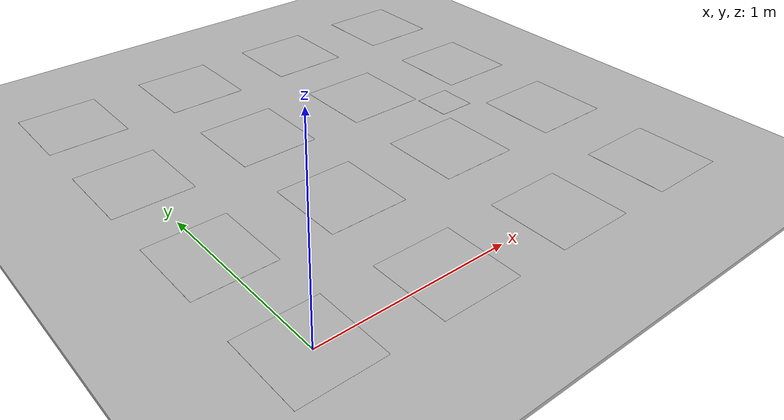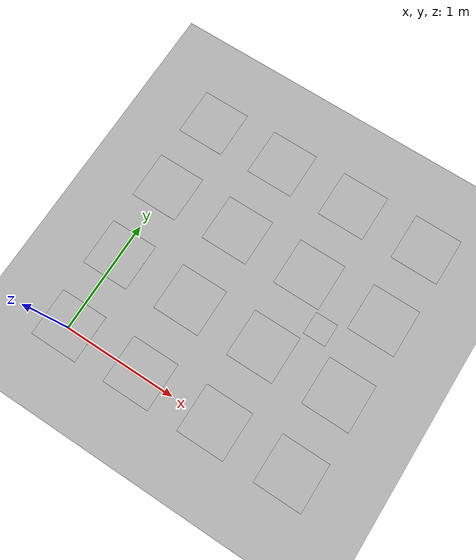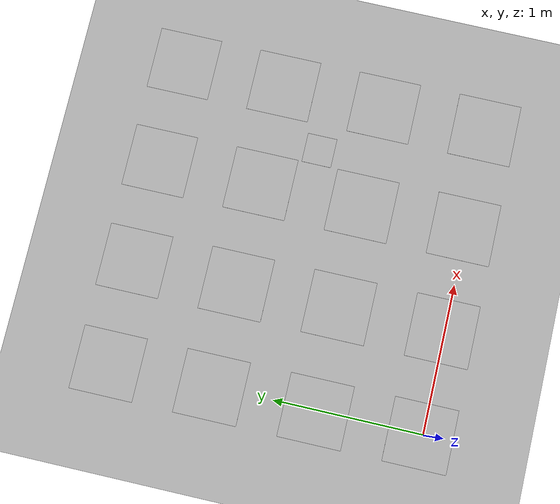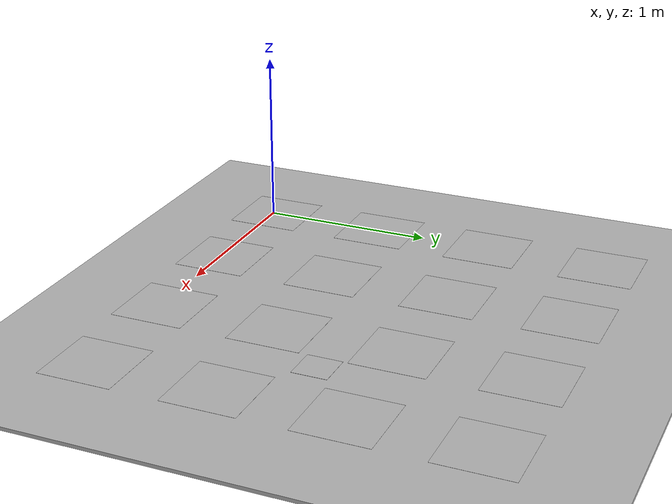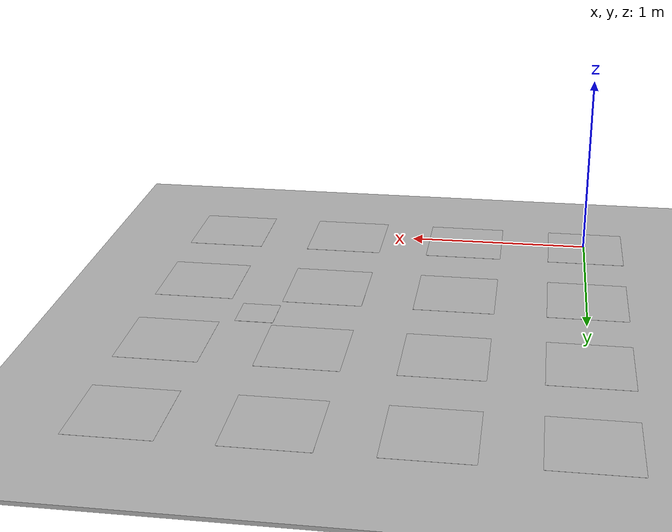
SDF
<sdf version="1.7">
 <world name="default">
  <light name="sun" type="directional">
   <pose>0 0 10 0 -0 0</pose>
   <diffuse>0.8 0.8 0.8 1</diffuse>
   <specular>0.2 0.2 0.2 1</specular>
   <attenuation>
    <range>1000</range>
    <constant>0.9</constant>
    <linear>0.01</linear>
    <quadratic>0.001</quadratic>
   </attenuation>
   <direction>-0.5 0.1 -0.9</direction>
   <spot><inner_angle>0</inner_angle><outer_angle>0</outer_angle><falloff>0</falloff></spot>
  </light>
  <model name="parquet_plane">
   <static>1</static>
   <link name="link">
    <collision name="collision"><geometry><box><size>200 200 0.02</size></box></geometry></collision>
    <visual name="visual">
     <cast_shadows>0</cast_shadows>
     <geometry><box><size>200 200 0.02</size></box></geometry>
     <material>
      <script>
       <uri>model://parquet_plane/materials/scripts</uri>
       <uri>model://parquet_plane/materials/textures</uri>
       <name>parquet</name>
      </script>
     </material>
    </visual>
   </link>
   <pose>0 0 -0.01 0 -0 0</pose>
  </model>
  <scene>
   <ambient>0.8 0.8 0.8 1</ambient>
   <background>0.8 0.9 1 1</background>
   <shadows>0</shadows>
   <grid>0</grid>
   <origin_visual>0</origin_visual>
  </scene>
  <physics name="default_physics" default="0" type="ode">
   <ode>
    <solver>
     <type>quick</type>
     <iters>10</iters>
     <sor>1.3</sor>
     <use_dynamic_moi_rescaling>0</use_dynamic_moi_rescaling>
    </solver>
    <constraints>
     <cfm>0</cfm>
     <erp>0.2</erp>
     <contact_max_correcting_vel>100</contact_max_correcting_vel>
     <contact_surface_layer>0.001</contact_surface_layer>
    </constraints>
   </ode>
   <max_step_size>0.004</max_step_size>
   <real_time_factor>1</real_time_factor>
   <real_time_update_rate>250</real_time_update_rate>
  </physics>
  <gravity>0 0 -9.8066</gravity>
  <magnetic_field>6e-06 2.3e-05 -4.2e-05</magnetic_field>
  <atmosphere type="adiabatic"/>
  <spherical_coordinates>
   <surface_model>EARTH_WGS84</surface_model>
   <latitude_deg>0</latitude_deg>
   <longitude_deg>0</longitude_deg>
   <elevation>0</elevation>
   <heading_deg>0</heading_deg>
  </spherical_coordinates>
  <model name="aruco_2_16">
   <static>1</static>
   <link name="aruco_2_16_link">
    <visual name="visual_marker_2_52">
     <pose>0 2.088 0 0 -0 1.5708</pose>
     <cast_shadows>0</cast_shadows>
     <geometry><box><size>0.424 0.424 0.001</size></box></geometry>
     <material>
      <script>
       <uri>model://aruco_shirokaya_1_txt/materials/scripts</uri>
       <uri>model://aruco_shirokaya_1_txt/materials/textures</uri>
       <name>aruco/marker_2_52</name>
      </script>
     </material>
    </visual>
    <visual name="visual_marker_2_53">
     <pose>0.696 2.088 0 0 -0 1.5708</pose>
     <cast_shadows>0</cast_shadows>
     <geometry><box><size>0.424 0.424 0.001</size></box></geometry>
     <material>
      <script>
       <uri>model://aruco_shirokaya_1_txt/materials/scripts</uri>
       <uri>model://aruco_shirokaya_1_txt/materials/textures</uri>
       <name>aruco/marker_2_53</name>
      </script>
     </material>
    </visual>
    <visual name="visual_marker_2_54">
     <pose>1.392 2.088 0 0 -0 1.5708</pose>
     <cast_shadows>0</cast_shadows>
     <geometry><box><size>0.424 0.424 0.001</size></box></geometry>
     <material>
      <script>
       <uri>model://aruco_shirokaya_1_txt/materials/scripts</uri>
       <uri>model://aruco_shirokaya_1_txt/materials/textures</uri>
       <name>aruco/marker_2_54</name>
      </script>
     </material>
    </visual>
    <visual name="visual_marker_2_55">
     <pose>2.088 2.088 0 0 -0 1.5708</pose>
     <cast_shadows>0</cast_shadows>
     <geometry><box><size>0.424 0.424 0.001</size></box></geometry>
     <material>
      <script>
       <uri>model://aruco_shirokaya_1_txt/materials/scripts</uri>
       <uri>model://aruco_shirokaya_1_txt/materials/textures</uri>
       <name>aruco/marker_2_55</name>
      </script>
     </material>
    </visual>
    <visual name="visual_marker_2_48">
     <pose>0 1.392 0 0 -0 1.5708</pose>
     <cast_shadows>0</cast_shadows>
     <geometry><box><size>0.424 0.424 0.001</size></box></geometry>
     <material>
      <script>
       <uri>model://aruco_shirokaya_1_txt/materials/scripts</uri>
       <uri>model://aruco_shirokaya_1_txt/materials/textures</uri>
       <name>aruco/marker_2_48</name>
      </script>
     </material>
    </visual>
    <visual name="visual_marker_2_49">
     <pose>0.696 1.392 0 0 -0 1.5708</pose>
     <cast_shadows>0</cast_shadows>
     <geometry><box><size>0.424 0.424 0.001</size></box></geometry>
     <material>
      <script>
       <uri>model://aruco_shirokaya_1_txt/materials/scripts</uri>
       <uri>model://aruco_shirokaya_1_txt/materials/textures</uri>
       <name>aruco/marker_2_49</name>
      </script>
     </material>
    </visual>
    <visual name="visual_marker_2_50">
     <pose>1.392 1.392 0 0 -0 1.5708</pose>
     <cast_shadows>0</cast_shadows>
     <geometry><box><size>0.424 0.424 0.001</size></box></geometry>
     <material>
      <script>
       <uri>model://aruco_shirokaya_1_txt/materials/scripts</uri>
       <uri>model://aruco_shirokaya_1_txt/materials/textures</uri>
       <name>aruco/marker_2_50</name>
      </script>
     </material>
    </visual>
    <visual name="visual_marker_2_51">
     <pose>2.088 1.392 0 0 -0 1.5708</pose>
     <cast_shadows>0</cast_shadows>
     <geometry><box><size>0.424 0.424 0.001</size></box></geometry>
     <material>
      <script>
       <uri>model://aruco_shirokaya_1_txt/materials/scripts</uri>
       <uri>model://aruco_shirokaya_1_txt/materials/textures</uri>
       <name>aruco/marker_2_51</name>
      </script>
     </material>
    </visual>
    <visual name="visual_marker_2_44">
     <pose>0 0.696 0 0 -0 1.5708</pose>
     <cast_shadows>0</cast_shadows>
     <geometry><box><size>0.424 0.424 0.001</size></box></geometry>
     <material>
      <script>
       <uri>model://aruco_shirokaya_1_txt/materials/scripts</uri>
       <uri>model://aruco_shirokaya_1_txt/materials/textures</uri>
       <name>aruco/marker_2_44</name>
      </script>
     </material>
    </visual>
    <visual name="visual_marker_2_45">
     <pose>0.696 0.696 0 0 -0 1.5708</pose>
     <cast_shadows>0</cast_shadows>
     <geometry><box><size>0.424 0.424 0.001</size></box></geometry>
     <material>
      <script>
       <uri>model://aruco_shirokaya_1_txt/materials/scripts</uri>
       <uri>model://aruco_shirokaya_1_txt/materials/textures</uri>
       <name>aruco/marker_2_45</name>
      </script>
     </material>
    </visual>
    <visual name="visual_marker_2_46">
     <pose>1.392 0.696 0 0 -0 1.5708</pose>
     <cast_shadows>0</cast_shadows>
     <geometry><box><size>0.424 0.424 0.001</size></box></geometry>
     <material>
      <script>
       <uri>model://aruco_shirokaya_1_txt/materials/scripts</uri>
       <uri>model://aruco_shirokaya_1_txt/materials/textures</uri>
       <name>aruco/marker_2_46</name>
      </script>
     </material>
    </visual>
    <visual name="visual_marker_2_47">
     <pose>2.088 0.696 0 0 -0 1.5708</pose>
     <cast_shadows>0</cast_shadows>
     <geometry><box><size>0.424 0.424 0.001</size></box></geometry>
     <material>
      <script>
       <uri>model://aruco_shirokaya_1_txt/materials/scripts</uri>
       <uri>model://aruco_shirokaya_1_txt/materials/textures</uri>
       <name>aruco/marker_2_47</name>
      </script>
     </material>
    </visual>
    <visual name="visual_marker_2_40">
     <pose>0 0 0 0 -0 1.5708</pose>
     <cast_shadows>0</cast_shadows>
     <geometry><box><size>0.424 0.424 0.001</size></box></geometry>
     <material>
      <script>
       <uri>model://aruco_shirokaya_1_txt/materials/scripts</uri>
       <uri>model://aruco_shirokaya_1_txt/materials/textures</uri>
       <name>aruco/marker_2_40</name>
      </script>
     </material>
    </visual>
    <visual name="visual_marker_2_41">
     <pose>0.696 0 0 0 -0 1.5708</pose>
     <cast_shadows>0</cast_shadows>
     <geometry><box><size>0.424 0.424 0.001</size></box></geometry>
     <material>
      <script>
       <uri>model://aruco_shirokaya_1_txt/materials/scripts</uri>
       <uri>model://aruco_shirokaya_1_txt/materials/textures</uri>
       <name>aruco/marker_2_41</name>
      </script>
     </material>
    </visual>
    <visual name="visual_marker_2_42">
     <pose>1.392 0 0 0 -0 1.5708</pose>
     <cast_shadows>0</cast_shadows>
     <geometry><box><size>0.424 0.424 0.001</size></box></geometry>
     <material>
      <script>
       <uri>model://aruco_shirokaya_1_txt/materials/scripts</uri>
       <uri>model://aruco_shirokaya_1_txt/materials/textures</uri>
       <name>aruco/marker_2_42</name>
      </script>
     </material>
    </visual>
    <visual name="visual_marker_2_43">
     <pose>2.088 0 0 0 -0 1.5708</pose>
     <cast_shadows>0</cast_shadows>
     <geometry><box><size>0.424 0.424 0.001</size></box></geometry>
     <material>
      <script>
       <uri>model://aruco_shirokaya_1_txt/materials/scripts</uri>
       <uri>model://aruco_shirokaya_1_txt/materials/textures</uri>
       <name>aruco/marker_2_43</name>
      </script>
     </material>
    </visual>
   </link>
   <pose>-0.007341 0.017561 0 0 -0 0</pose>
  </model>
  <model name="qr">
   <static>1</static>
   <link name="qr_link">
    <pose>0 0 0.001 0 -0 1.5708</pose>
    <visual name="visual_qr">
     <cast_shadows>0</cast_shadows>
     <geometry><box><size>0.2 0.2 0.001</size></box></geometry>
     <material>
      <script>
       <uri>model://qr_hello/materials/scripts</uri>
       <uri>model://qr_hello/materials/textures</uri>
       <name>qr/hello</name>
      </script>
     </material>
    </visual>
   </link>
   <pose>1.6946 1.07414 0 0 -0 0</pose>
  </model>
 </world>
</sdf>
